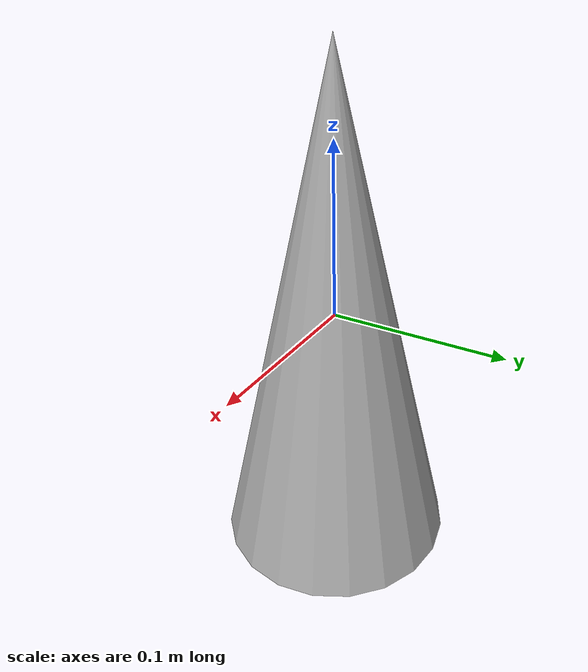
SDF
<?xml version="1.0" encoding="UTF-8"?>
<sdf version='1.5'>
  <model name="rocket_cone">
    <link name='rocket_cone_link'>
      <pose>0 0 0 0 0 0</pose>
      <inertial>
        <pose>0 0 0 0 0 0</pose>
        <mass>0.1</mass>
        <inertia>
          <ixx>0.001</ixx>
          <ixy>0</ixy>
          <ixz>0</ixz>
          <iyy>0.001</iyy>
          <iyz>0</iyz>
          <izz>0.001</izz>
        </inertia>
      </inertial>
      <velocity_decay>
        <linear>0.01</linear>
        <angular>0.005</angular>
      </velocity_decay>
      <collision name="rocket_cone_collision">
        <geometry>
          <cone>
            <radius>0.07036</radius>
            <length>0.3</length>
          </cone>
        </geometry>
      </collision>
      <visual name="rocket_cone_visual">
        <geometry>
          <cone>
            <radius>0.07036</radius>
            <length>0.3</length>
          </cone>
        </geometry>
      </visual>
    </link>
  </model>
</sdf>
